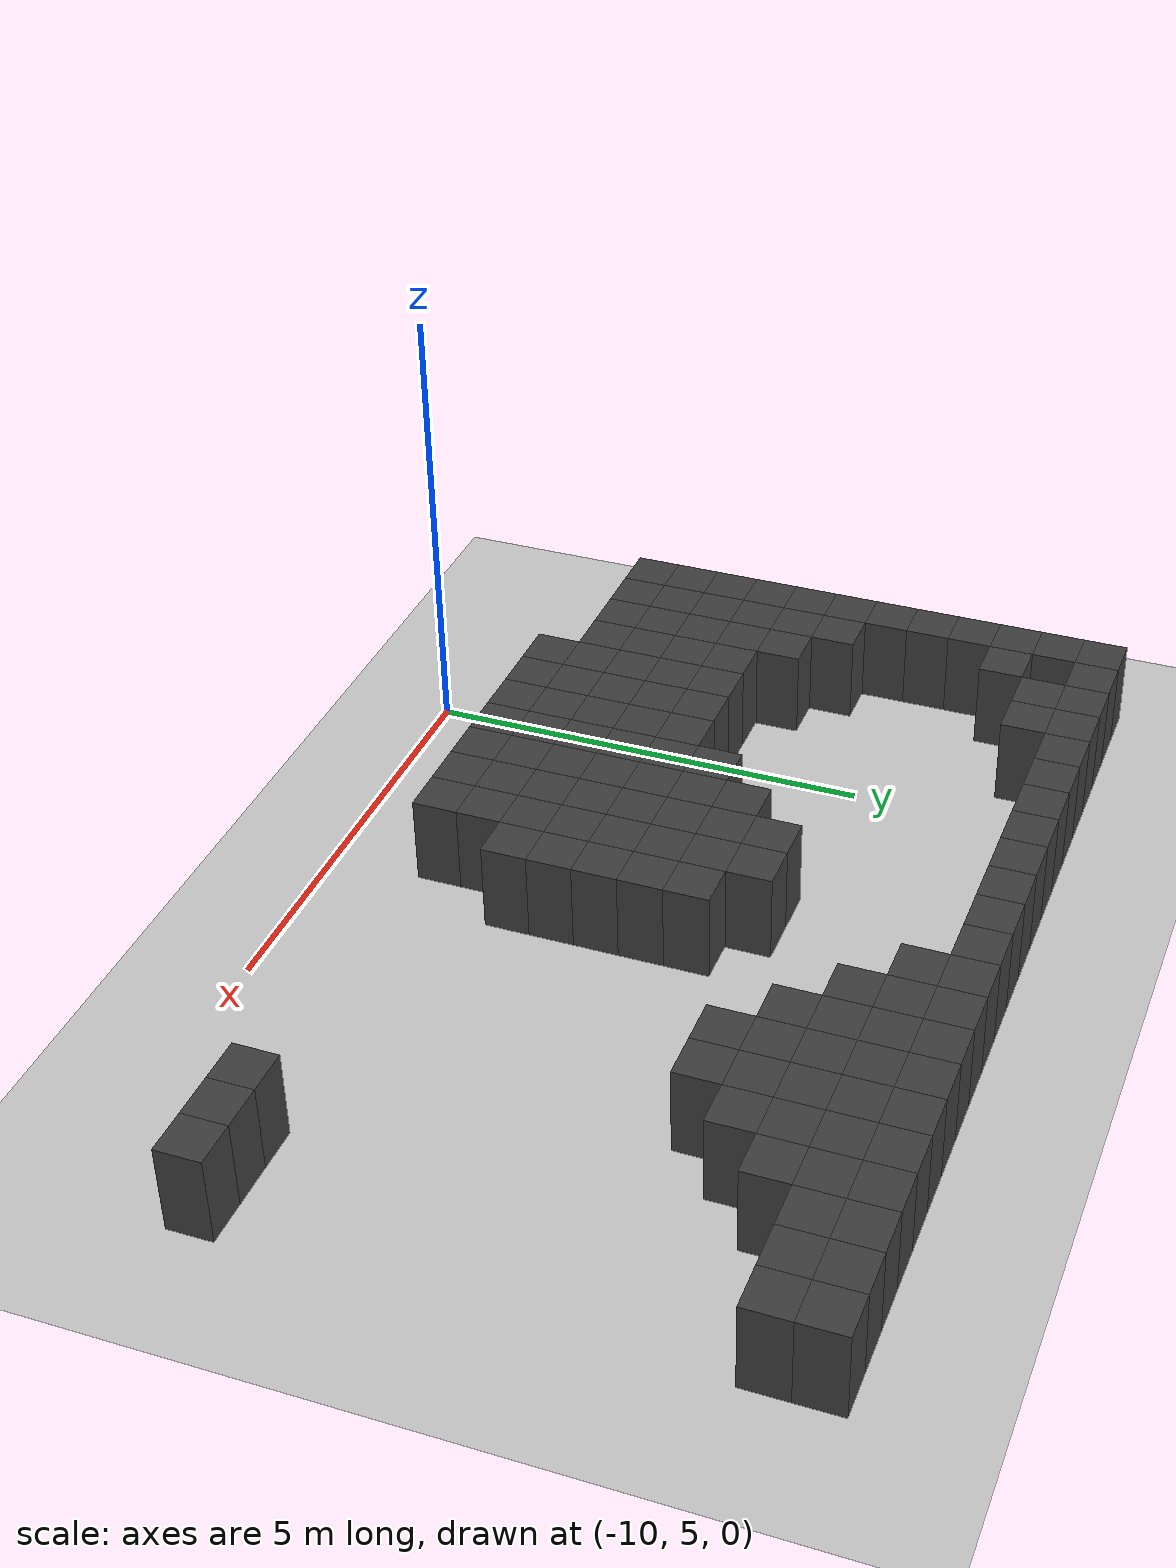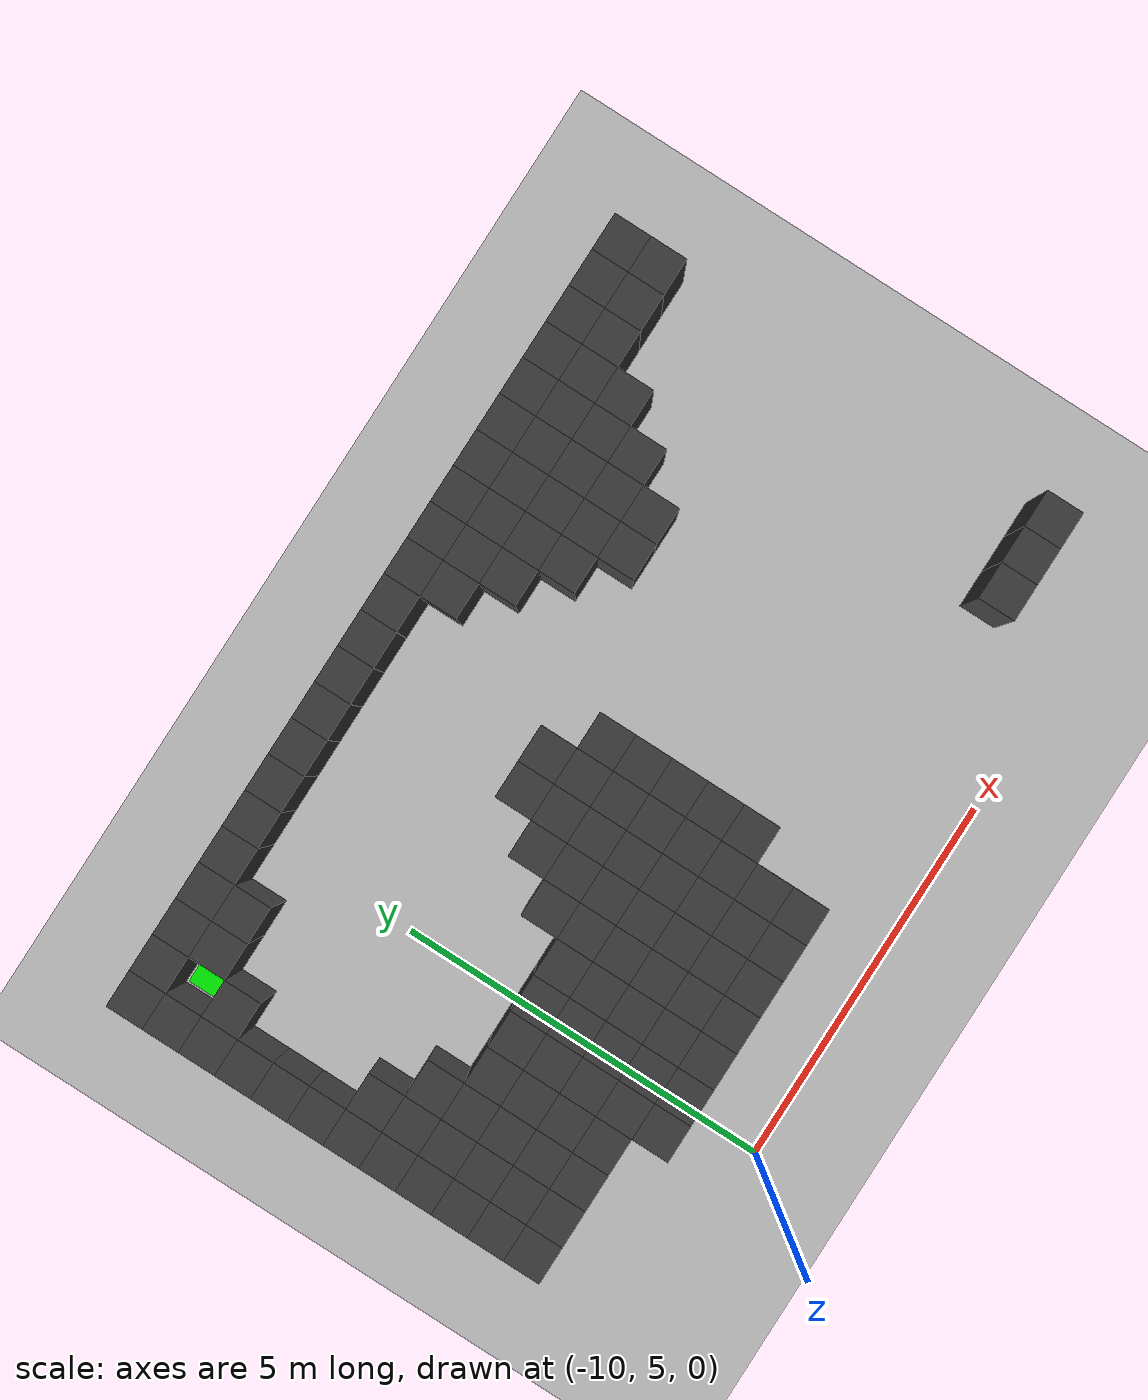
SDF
<sdf version="1.7">
 <world name="map_8658">
  <model name="ground_plane">
   <static>true</static>
   <link name="link">
    <collision name="collision">
     <geometry><plane><normal>0 0 1</normal><size>200 200</size></plane></geometry>
    </collision>
    <visual name="visual">
     <geometry><plane><normal>0 0 1</normal><size>200 200</size></plane></geometry>
     <material><ambient>0.8 0.8 0.8 1</ambient><diffuse>0.8 0.8 0.8 1</diffuse></material>
    </visual>
   </link>
  </model>
  <model name="maze_environment">
   <static>true</static>
   <link name="wall_0">
    <pose>-12.250 12.250 0.500 0 0 0</pose>
    <collision name="col"><geometry><box><size>0.5 0.5 1.0</size></box></geometry></collision>
    <visual name="vis">
     <geometry><box><size>0.5 0.5 1.0</size></box></geometry>
     <material><ambient>0.15 0.15 0.15 1</ambient><diffuse>0.25 0.25 0.25 1</diffuse></material>
    </visual>
   </link>
   <link name="wall_1">
    <pose>-11.750 12.250 0.500 0 0 0</pose>
    <collision name="col"><geometry><box><size>0.5 0.5 1.0</size></box></geometry></collision>
    <visual name="vis">
     <geometry><box><size>0.5 0.5 1.0</size></box></geometry>
     <material><ambient>0.15 0.15 0.15 1</ambient><diffuse>0.25 0.25 0.25 1</diffuse></material>
    </visual>
   </link>
   <link name="wall_2">
    <pose>-11.250 12.250 0.500 0 0 0</pose>
    <collision name="col"><geometry><box><size>0.5 0.5 1.0</size></box></geometry></collision>
    <visual name="vis">
     <geometry><box><size>0.5 0.5 1.0</size></box></geometry>
     <material><ambient>0.15 0.15 0.15 1</ambient><diffuse>0.25 0.25 0.25 1</diffuse></material>
    </visual>
   </link>
   <link name="wall_3">
    <pose>-10.750 12.250 0.500 0 0 0</pose>
    <collision name="col"><geometry><box><size>0.5 0.5 1.0</size></box></geometry></collision>
    <visual name="vis">
     <geometry><box><size>0.5 0.5 1.0</size></box></geometry>
     <material><ambient>0.15 0.15 0.15 1</ambient><diffuse>0.25 0.25 0.25 1</diffuse></material>
    </visual>
   </link>
   <link name="wall_4">
    <pose>-10.250 12.250 0.500 0 0 0</pose>
    <collision name="col"><geometry><box><size>0.5 0.5 1.0</size></box></geometry></collision>
    <visual name="vis">
     <geometry><box><size>0.5 0.5 1.0</size></box></geometry>
     <material><ambient>0.15 0.15 0.15 1</ambient><diffuse>0.25 0.25 0.25 1</diffuse></material>
    </visual>
   </link>
   <link name="wall_5">
    <pose>-9.750 12.250 0.500 0 0 0</pose>
    <collision name="col"><geometry><box><size>0.5 0.5 1.0</size></box></geometry></collision>
    <visual name="vis">
     <geometry><box><size>0.5 0.5 1.0</size></box></geometry>
     <material><ambient>0.15 0.15 0.15 1</ambient><diffuse>0.25 0.25 0.25 1</diffuse></material>
    </visual>
   </link>
   <link name="wall_6">
    <pose>-9.250 12.250 0.500 0 0 0</pose>
    <collision name="col"><geometry><box><size>0.5 0.5 1.0</size></box></geometry></collision>
    <visual name="vis">
     <geometry><box><size>0.5 0.5 1.0</size></box></geometry>
     <material><ambient>0.15 0.15 0.15 1</ambient><diffuse>0.25 0.25 0.25 1</diffuse></material>
    </visual>
   </link>
   <link name="wall_7">
    <pose>-8.750 12.250 0.500 0 0 0</pose>
    <collision name="col"><geometry><box><size>0.5 0.5 1.0</size></box></geometry></collision>
    <visual name="vis">
     <geometry><box><size>0.5 0.5 1.0</size></box></geometry>
     <material><ambient>0.15 0.15 0.15 1</ambient><diffuse>0.25 0.25 0.25 1</diffuse></material>
    </visual>
   </link>
   <link name="wall_8">
    <pose>-8.250 12.250 0.500 0 0 0</pose>
    <collision name="col"><geometry><box><size>0.5 0.5 1.0</size></box></geometry></collision>
    <visual name="vis">
     <geometry><box><size>0.5 0.5 1.0</size></box></geometry>
     <material><ambient>0.15 0.15 0.15 1</ambient><diffuse>0.25 0.25 0.25 1</diffuse></material>
    </visual>
   </link>
   <link name="wall_9">
    <pose>-7.750 12.250 0.500 0 0 0</pose>
    <collision name="col"><geometry><box><size>0.5 0.5 1.0</size></box></geometry></collision>
    <visual name="vis">
     <geometry><box><size>0.5 0.5 1.0</size></box></geometry>
     <material><ambient>0.15 0.15 0.15 1</ambient><diffuse>0.25 0.25 0.25 1</diffuse></material>
    </visual>
   </link>
   <link name="wall_10">
    <pose>-7.250 12.250 0.500 0 0 0</pose>
    <collision name="col"><geometry><box><size>0.5 0.5 1.0</size></box></geometry></collision>
    <visual name="vis">
     <geometry><box><size>0.5 0.5 1.0</size></box></geometry>
     <material><ambient>0.15 0.15 0.15 1</ambient><diffuse>0.25 0.25 0.25 1</diffuse></material>
    </visual>
   </link>
   <link name="wall_11">
    <pose>-6.750 12.250 0.500 0 0 0</pose>
    <collision name="col"><geometry><box><size>0.5 0.5 1.0</size></box></geometry></collision>
    <visual name="vis">
     <geometry><box><size>0.5 0.5 1.0</size></box></geometry>
     <material><ambient>0.15 0.15 0.15 1</ambient><diffuse>0.25 0.25 0.25 1</diffuse></material>
    </visual>
   </link>
   <link name="wall_12">
    <pose>-6.250 12.250 0.500 0 0 0</pose>
    <collision name="col"><geometry><box><size>0.5 0.5 1.0</size></box></geometry></collision>
    <visual name="vis">
     <geometry><box><size>0.5 0.5 1.0</size></box></geometry>
     <material><ambient>0.15 0.15 0.15 1</ambient><diffuse>0.25 0.25 0.25 1</diffuse></material>
    </visual>
   </link>
   <link name="wall_13">
    <pose>-5.750 12.250 0.500 0 0 0</pose>
    <collision name="col"><geometry><box><size>0.5 0.5 1.0</size></box></geometry></collision>
    <visual name="vis">
     <geometry><box><size>0.5 0.5 1.0</size></box></geometry>
     <material><ambient>0.15 0.15 0.15 1</ambient><diffuse>0.25 0.25 0.25 1</diffuse></material>
    </visual>
   </link>
   <link name="wall_14">
    <pose>-5.250 12.250 0.500 0 0 0</pose>
    <collision name="col"><geometry><box><size>0.5 0.5 1.0</size></box></geometry></collision>
    <visual name="vis">
     <geometry><box><size>0.5 0.5 1.0</size></box></geometry>
     <material><ambient>0.15 0.15 0.15 1</ambient><diffuse>0.25 0.25 0.25 1</diffuse></material>
    </visual>
   </link>
   <link name="wall_15">
    <pose>-4.750 12.250 0.500 0 0 0</pose>
    <collision name="col"><geometry><box><size>0.5 0.5 1.0</size></box></geometry></collision>
    <visual name="vis">
     <geometry><box><size>0.5 0.5 1.0</size></box></geometry>
     <material><ambient>0.15 0.15 0.15 1</ambient><diffuse>0.25 0.25 0.25 1</diffuse></material>
    </visual>
   </link>
   <link name="wall_16">
    <pose>-4.250 12.250 0.500 0 0 0</pose>
    <collision name="col"><geometry><box><size>0.5 0.5 1.0</size></box></geometry></collision>
    <visual name="vis">
     <geometry><box><size>0.5 0.5 1.0</size></box></geometry>
     <material><ambient>0.15 0.15 0.15 1</ambient><diffuse>0.25 0.25 0.25 1</diffuse></material>
    </visual>
   </link>
   <link name="wall_17">
    <pose>-3.750 12.250 0.500 0 0 0</pose>
    <collision name="col"><geometry><box><size>0.5 0.5 1.0</size></box></geometry></collision>
    <visual name="vis">
     <geometry><box><size>0.5 0.5 1.0</size></box></geometry>
     <material><ambient>0.15 0.15 0.15 1</ambient><diffuse>0.25 0.25 0.25 1</diffuse></material>
    </visual>
   </link>
   <link name="wall_18">
    <pose>-3.250 12.250 0.500 0 0 0</pose>
    <collision name="col"><geometry><box><size>0.5 0.5 1.0</size></box></geometry></collision>
    <visual name="vis">
     <geometry><box><size>0.5 0.5 1.0</size></box></geometry>
     <material><ambient>0.15 0.15 0.15 1</ambient><diffuse>0.25 0.25 0.25 1</diffuse></material>
    </visual>
   </link>
   <link name="wall_19">
    <pose>-2.750 12.250 0.500 0 0 0</pose>
    <collision name="col"><geometry><box><size>0.5 0.5 1.0</size></box></geometry></collision>
    <visual name="vis">
     <geometry><box><size>0.5 0.5 1.0</size></box></geometry>
     <material><ambient>0.15 0.15 0.15 1</ambient><diffuse>0.25 0.25 0.25 1</diffuse></material>
    </visual>
   </link>
   <link name="wall_20">
    <pose>-2.250 12.250 0.500 0 0 0</pose>
    <collision name="col"><geometry><box><size>0.5 0.5 1.0</size></box></geometry></collision>
    <visual name="vis">
     <geometry><box><size>0.5 0.5 1.0</size></box></geometry>
     <material><ambient>0.15 0.15 0.15 1</ambient><diffuse>0.25 0.25 0.25 1</diffuse></material>
    </visual>
   </link>
   <link name="wall_21">
    <pose>-1.750 12.250 0.500 0 0 0</pose>
    <collision name="col"><geometry><box><size>0.5 0.5 1.0</size></box></geometry></collision>
    <visual name="vis">
     <geometry><box><size>0.5 0.5 1.0</size></box></geometry>
     <material><ambient>0.15 0.15 0.15 1</ambient><diffuse>0.25 0.25 0.25 1</diffuse></material>
    </visual>
   </link>
   <link name="wall_50">
    <pose>-12.250 11.750 0.500 0 0 0</pose>
    <collision name="col"><geometry><box><size>0.5 0.5 1.0</size></box></geometry></collision>
    <visual name="vis">
     <geometry><box><size>0.5 0.5 1.0</size></box></geometry>
     <material><ambient>0.15 0.15 0.15 1</ambient><diffuse>0.25 0.25 0.25 1</diffuse></material>
    </visual>
   </link>
   <link name="wall_51">
    <pose>-11.250 11.750 0.500 0 0 0</pose>
    <collision name="col"><geometry><box><size>0.5 0.5 1.0</size></box></geometry></collision>
    <visual name="vis">
     <geometry><box><size>0.5 0.5 1.0</size></box></geometry>
     <material><ambient>0.15 0.15 0.15 1</ambient><diffuse>0.25 0.25 0.25 1</diffuse></material>
    </visual>
   </link>
   <link name="wall_52">
    <pose>-10.750 11.750 0.500 0 0 0</pose>
    <collision name="col"><geometry><box><size>0.5 0.5 1.0</size></box></geometry></collision>
    <visual name="vis">
     <geometry><box><size>0.5 0.5 1.0</size></box></geometry>
     <material><ambient>0.15 0.15 0.15 1</ambient><diffuse>0.25 0.25 0.25 1</diffuse></material>
    </visual>
   </link>
   <link name="wall_53">
    <pose>-6.250 11.750 0.500 0 0 0</pose>
    <collision name="col"><geometry><box><size>0.5 0.5 1.0</size></box></geometry></collision>
    <visual name="vis">
     <geometry><box><size>0.5 0.5 1.0</size></box></geometry>
     <material><ambient>0.15 0.15 0.15 1</ambient><diffuse>0.25 0.25 0.25 1</diffuse></material>
    </visual>
   </link>
   <link name="wall_54">
    <pose>-5.750 11.750 0.500 0 0 0</pose>
    <collision name="col"><geometry><box><size>0.5 0.5 1.0</size></box></geometry></collision>
    <visual name="vis">
     <geometry><box><size>0.5 0.5 1.0</size></box></geometry>
     <material><ambient>0.15 0.15 0.15 1</ambient><diffuse>0.25 0.25 0.25 1</diffuse></material>
    </visual>
   </link>
   <link name="wall_55">
    <pose>-5.250 11.750 0.500 0 0 0</pose>
    <collision name="col"><geometry><box><size>0.5 0.5 1.0</size></box></geometry></collision>
    <visual name="vis">
     <geometry><box><size>0.5 0.5 1.0</size></box></geometry>
     <material><ambient>0.15 0.15 0.15 1</ambient><diffuse>0.25 0.25 0.25 1</diffuse></material>
    </visual>
   </link>
   <link name="wall_56">
    <pose>-4.750 11.750 0.500 0 0 0</pose>
    <collision name="col"><geometry><box><size>0.5 0.5 1.0</size></box></geometry></collision>
    <visual name="vis">
     <geometry><box><size>0.5 0.5 1.0</size></box></geometry>
     <material><ambient>0.15 0.15 0.15 1</ambient><diffuse>0.25 0.25 0.25 1</diffuse></material>
    </visual>
   </link>
   <link name="wall_57">
    <pose>-4.250 11.750 0.500 0 0 0</pose>
    <collision name="col"><geometry><box><size>0.5 0.5 1.0</size></box></geometry></collision>
    <visual name="vis">
     <geometry><box><size>0.5 0.5 1.0</size></box></geometry>
     <material><ambient>0.15 0.15 0.15 1</ambient><diffuse>0.25 0.25 0.25 1</diffuse></material>
    </visual>
   </link>
   <link name="wall_58">
    <pose>-3.750 11.750 0.500 0 0 0</pose>
    <collision name="col"><geometry><box><size>0.5 0.5 1.0</size></box></geometry></collision>
    <visual name="vis">
     <geometry><box><size>0.5 0.5 1.0</size></box></geometry>
     <material><ambient>0.15 0.15 0.15 1</ambient><diffuse>0.25 0.25 0.25 1</diffuse></material>
    </visual>
   </link>
   <link name="wall_59">
    <pose>-3.250 11.750 0.500 0 0 0</pose>
    <collision name="col"><geometry><box><size>0.5 0.5 1.0</size></box></geometry></collision>
    <visual name="vis">
     <geometry><box><size>0.5 0.5 1.0</size></box></geometry>
     <material><ambient>0.15 0.15 0.15 1</ambient><diffuse>0.25 0.25 0.25 1</diffuse></material>
    </visual>
   </link>
   <link name="wall_60">
    <pose>-2.750 11.750 0.500 0 0 0</pose>
    <collision name="col"><geometry><box><size>0.5 0.5 1.0</size></box></geometry></collision>
    <visual name="vis">
     <geometry><box><size>0.5 0.5 1.0</size></box></geometry>
     <material><ambient>0.15 0.15 0.15 1</ambient><diffuse>0.25 0.25 0.25 1</diffuse></material>
    </visual>
   </link>
   <link name="wall_61">
    <pose>-2.250 11.750 0.500 0 0 0</pose>
    <collision name="col"><geometry><box><size>0.5 0.5 1.0</size></box></geometry></collision>
    <visual name="vis">
     <geometry><box><size>0.5 0.5 1.0</size></box></geometry>
     <material><ambient>0.15 0.15 0.15 1</ambient><diffuse>0.25 0.25 0.25 1</diffuse></material>
    </visual>
   </link>
   <link name="wall_62">
    <pose>-1.750 11.750 0.500 0 0 0</pose>
    <collision name="col"><geometry><box><size>0.5 0.5 1.0</size></box></geometry></collision>
    <visual name="vis">
     <geometry><box><size>0.5 0.5 1.0</size></box></geometry>
     <material><ambient>0.15 0.15 0.15 1</ambient><diffuse>0.25 0.25 0.25 1</diffuse></material>
    </visual>
   </link>
   <link name="wall_83">
    <pose>-12.250 11.250 0.500 0 0 0</pose>
    <collision name="col"><geometry><box><size>0.5 0.5 1.0</size></box></geometry></collision>
    <visual name="vis">
     <geometry><box><size>0.5 0.5 1.0</size></box></geometry>
     <material><ambient>0.15 0.15 0.15 1</ambient><diffuse>0.25 0.25 0.25 1</diffuse></material>
    </visual>
   </link>
   <link name="wall_84">
    <pose>-11.750 11.250 0.500 0 0 0</pose>
    <collision name="col"><geometry><box><size>0.5 0.5 1.0</size></box></geometry></collision>
    <visual name="vis">
     <geometry><box><size>0.5 0.5 1.0</size></box></geometry>
     <material><ambient>0.15 0.15 0.15 1</ambient><diffuse>0.25 0.25 0.25 1</diffuse></material>
    </visual>
   </link>
   <link name="wall_85">
    <pose>-5.750 11.250 0.500 0 0 0</pose>
    <collision name="col"><geometry><box><size>0.5 0.5 1.0</size></box></geometry></collision>
    <visual name="vis">
     <geometry><box><size>0.5 0.5 1.0</size></box></geometry>
     <material><ambient>0.15 0.15 0.15 1</ambient><diffuse>0.25 0.25 0.25 1</diffuse></material>
    </visual>
   </link>
   <link name="wall_86">
    <pose>-5.250 11.250 0.500 0 0 0</pose>
    <collision name="col"><geometry><box><size>0.5 0.5 1.0</size></box></geometry></collision>
    <visual name="vis">
     <geometry><box><size>0.5 0.5 1.0</size></box></geometry>
     <material><ambient>0.15 0.15 0.15 1</ambient><diffuse>0.25 0.25 0.25 1</diffuse></material>
    </visual>
   </link>
   <link name="wall_87">
    <pose>-4.750 11.250 0.500 0 0 0</pose>
    <collision name="col"><geometry><box><size>0.5 0.5 1.0</size></box></geometry></collision>
    <visual name="vis">
     <geometry><box><size>0.5 0.5 1.0</size></box></geometry>
     <material><ambient>0.15 0.15 0.15 1</ambient><diffuse>0.25 0.25 0.25 1</diffuse></material>
    </visual>
   </link>
   <link name="wall_88">
    <pose>-4.250 11.250 0.500 0 0 0</pose>
    <collision name="col"><geometry><box><size>0.5 0.5 1.0</size></box></geometry></collision>
    <visual name="vis">
     <geometry><box><size>0.5 0.5 1.0</size></box></geometry>
     <material><ambient>0.15 0.15 0.15 1</ambient><diffuse>0.25 0.25 0.25 1</diffuse></material>
    </visual>
   </link>
   <link name="wall_89">
    <pose>-3.750 11.250 0.500 0 0 0</pose>
    <collision name="col"><geometry><box><size>0.5 0.5 1.0</size></box></geometry></collision>
    <visual name="vis">
     <geometry><box><size>0.5 0.5 1.0</size></box></geometry>
     <material><ambient>0.15 0.15 0.15 1</ambient><diffuse>0.25 0.25 0.25 1</diffuse></material>
    </visual>
   </link>
   <link name="wall_90">
    <pose>-3.250 11.250 0.500 0 0 0</pose>
    <collision name="col"><geometry><box><size>0.5 0.5 1.0</size></box></geometry></collision>
    <visual name="vis">
     <geometry><box><size>0.5 0.5 1.0</size></box></geometry>
     <material><ambient>0.15 0.15 0.15 1</ambient><diffuse>0.25 0.25 0.25 1</diffuse></material>
    </visual>
   </link>
   <link name="wall_106">
    <pose>-12.250 10.750 0.500 0 0 0</pose>
    <collision name="col"><geometry><box><size>0.5 0.5 1.0</size></box></geometry></collision>
    <visual name="vis">
     <geometry><box><size>0.5 0.5 1.0</size></box></geometry>
     <material><ambient>0.15 0.15 0.15 1</ambient><diffuse>0.25 0.25 0.25 1</diffuse></material>
    </visual>
   </link>
   <link name="wall_107">
    <pose>-5.250 10.750 0.500 0 0 0</pose>
    <collision name="col"><geometry><box><size>0.5 0.5 1.0</size></box></geometry></collision>
    <visual name="vis">
     <geometry><box><size>0.5 0.5 1.0</size></box></geometry>
     <material><ambient>0.15 0.15 0.15 1</ambient><diffuse>0.25 0.25 0.25 1</diffuse></material>
    </visual>
   </link>
   <link name="wall_108">
    <pose>-4.750 10.750 0.500 0 0 0</pose>
    <collision name="col"><geometry><box><size>0.5 0.5 1.0</size></box></geometry></collision>
    <visual name="vis">
     <geometry><box><size>0.5 0.5 1.0</size></box></geometry>
     <material><ambient>0.15 0.15 0.15 1</ambient><diffuse>0.25 0.25 0.25 1</diffuse></material>
    </visual>
   </link>
   <link name="wall_109">
    <pose>-4.250 10.750 0.500 0 0 0</pose>
    <collision name="col"><geometry><box><size>0.5 0.5 1.0</size></box></geometry></collision>
    <visual name="vis">
     <geometry><box><size>0.5 0.5 1.0</size></box></geometry>
     <material><ambient>0.15 0.15 0.15 1</ambient><diffuse>0.25 0.25 0.25 1</diffuse></material>
    </visual>
   </link>
   <link name="wall_110">
    <pose>-3.750 10.750 0.500 0 0 0</pose>
    <collision name="col"><geometry><box><size>0.5 0.5 1.0</size></box></geometry></collision>
    <visual name="vis">
     <geometry><box><size>0.5 0.5 1.0</size></box></geometry>
     <material><ambient>0.15 0.15 0.15 1</ambient><diffuse>0.25 0.25 0.25 1</diffuse></material>
    </visual>
   </link>
   <link name="wall_123">
    <pose>-12.250 10.250 0.500 0 0 0</pose>
    <collision name="col"><geometry><box><size>0.5 0.5 1.0</size></box></geometry></collision>
    <visual name="vis">
     <geometry><box><size>0.5 0.5 1.0</size></box></geometry>
     <material><ambient>0.15 0.15 0.15 1</ambient><diffuse>0.25 0.25 0.25 1</diffuse></material>
    </visual>
   </link>
   <link name="wall_124">
    <pose>-4.750 10.250 0.500 0 0 0</pose>
    <collision name="col"><geometry><box><size>0.5 0.5 1.0</size></box></geometry></collision>
    <visual name="vis">
     <geometry><box><size>0.5 0.5 1.0</size></box></geometry>
     <material><ambient>0.15 0.15 0.15 1</ambient><diffuse>0.25 0.25 0.25 1</diffuse></material>
    </visual>
   </link>
   <link name="wall_125">
    <pose>-4.250 10.250 0.500 0 0 0</pose>
    <collision name="col"><geometry><box><size>0.5 0.5 1.0</size></box></geometry></collision>
    <visual name="vis">
     <geometry><box><size>0.5 0.5 1.0</size></box></geometry>
     <material><ambient>0.15 0.15 0.15 1</ambient><diffuse>0.25 0.25 0.25 1</diffuse></material>
    </visual>
   </link>
   <link name="wall_136">
    <pose>-12.250 9.750 0.500 0 0 0</pose>
    <collision name="col"><geometry><box><size>0.5 0.5 1.0</size></box></geometry></collision>
    <visual name="vis">
     <geometry><box><size>0.5 0.5 1.0</size></box></geometry>
     <material><ambient>0.15 0.15 0.15 1</ambient><diffuse>0.25 0.25 0.25 1</diffuse></material>
    </visual>
   </link>
   <link name="wall_137">
    <pose>-7.750 9.750 0.500 0 0 0</pose>
    <collision name="col"><geometry><box><size>0.5 0.5 1.0</size></box></geometry></collision>
    <visual name="vis">
     <geometry><box><size>0.5 0.5 1.0</size></box></geometry>
     <material><ambient>0.15 0.15 0.15 1</ambient><diffuse>0.25 0.25 0.25 1</diffuse></material>
    </visual>
   </link>
   <link name="wall_138">
    <pose>-7.250 9.750 0.500 0 0 0</pose>
    <collision name="col"><geometry><box><size>0.5 0.5 1.0</size></box></geometry></collision>
    <visual name="vis">
     <geometry><box><size>0.5 0.5 1.0</size></box></geometry>
     <material><ambient>0.15 0.15 0.15 1</ambient><diffuse>0.25 0.25 0.25 1</diffuse></material>
    </visual>
   </link>
   <link name="wall_152">
    <pose>-12.250 9.250 0.500 0 0 0</pose>
    <collision name="col"><geometry><box><size>0.5 0.5 1.0</size></box></geometry></collision>
    <visual name="vis">
     <geometry><box><size>0.5 0.5 1.0</size></box></geometry>
     <material><ambient>0.15 0.15 0.15 1</ambient><diffuse>0.25 0.25 0.25 1</diffuse></material>
    </visual>
   </link>
   <link name="wall_153">
    <pose>-11.750 9.250 0.500 0 0 0</pose>
    <collision name="col"><geometry><box><size>0.5 0.5 1.0</size></box></geometry></collision>
    <visual name="vis">
     <geometry><box><size>0.5 0.5 1.0</size></box></geometry>
     <material><ambient>0.15 0.15 0.15 1</ambient><diffuse>0.25 0.25 0.25 1</diffuse></material>
    </visual>
   </link>
   <link name="wall_154">
    <pose>-8.250 9.250 0.500 0 0 0</pose>
    <collision name="col"><geometry><box><size>0.5 0.5 1.0</size></box></geometry></collision>
    <visual name="vis">
     <geometry><box><size>0.5 0.5 1.0</size></box></geometry>
     <material><ambient>0.15 0.15 0.15 1</ambient><diffuse>0.25 0.25 0.25 1</diffuse></material>
    </visual>
   </link>
   <link name="wall_155">
    <pose>-7.750 9.250 0.500 0 0 0</pose>
    <collision name="col"><geometry><box><size>0.5 0.5 1.0</size></box></geometry></collision>
    <visual name="vis">
     <geometry><box><size>0.5 0.5 1.0</size></box></geometry>
     <material><ambient>0.15 0.15 0.15 1</ambient><diffuse>0.25 0.25 0.25 1</diffuse></material>
    </visual>
   </link>
   <link name="wall_156">
    <pose>-7.250 9.250 0.500 0 0 0</pose>
    <collision name="col"><geometry><box><size>0.5 0.5 1.0</size></box></geometry></collision>
    <visual name="vis">
     <geometry><box><size>0.5 0.5 1.0</size></box></geometry>
     <material><ambient>0.15 0.15 0.15 1</ambient><diffuse>0.25 0.25 0.25 1</diffuse></material>
    </visual>
   </link>
   <link name="wall_157">
    <pose>-6.750 9.250 0.500 0 0 0</pose>
    <collision name="col"><geometry><box><size>0.5 0.5 1.0</size></box></geometry></collision>
    <visual name="vis">
     <geometry><box><size>0.5 0.5 1.0</size></box></geometry>
     <material><ambient>0.15 0.15 0.15 1</ambient><diffuse>0.25 0.25 0.25 1</diffuse></material>
    </visual>
   </link>
   <link name="wall_169">
    <pose>-12.250 8.750 0.500 0 0 0</pose>
    <collision name="col"><geometry><box><size>0.5 0.5 1.0</size></box></geometry></collision>
    <visual name="vis">
     <geometry><box><size>0.5 0.5 1.0</size></box></geometry>
     <material><ambient>0.15 0.15 0.15 1</ambient><diffuse>0.25 0.25 0.25 1</diffuse></material>
    </visual>
   </link>
   <link name="wall_170">
    <pose>-11.750 8.750 0.500 0 0 0</pose>
    <collision name="col"><geometry><box><size>0.5 0.5 1.0</size></box></geometry></collision>
    <visual name="vis">
     <geometry><box><size>0.5 0.5 1.0</size></box></geometry>
     <material><ambient>0.15 0.15 0.15 1</ambient><diffuse>0.25 0.25 0.25 1</diffuse></material>
    </visual>
   </link>
   <link name="wall_171">
    <pose>-11.250 8.750 0.500 0 0 0</pose>
    <collision name="col"><geometry><box><size>0.5 0.5 1.0</size></box></geometry></collision>
    <visual name="vis">
     <geometry><box><size>0.5 0.5 1.0</size></box></geometry>
     <material><ambient>0.15 0.15 0.15 1</ambient><diffuse>0.25 0.25 0.25 1</diffuse></material>
    </visual>
   </link>
   <link name="wall_172">
    <pose>-8.750 8.750 0.500 0 0 0</pose>
    <collision name="col"><geometry><box><size>0.5 0.5 1.0</size></box></geometry></collision>
    <visual name="vis">
     <geometry><box><size>0.5 0.5 1.0</size></box></geometry>
     <material><ambient>0.15 0.15 0.15 1</ambient><diffuse>0.25 0.25 0.25 1</diffuse></material>
    </visual>
   </link>
   <link name="wall_173">
    <pose>-8.250 8.750 0.500 0 0 0</pose>
    <collision name="col"><geometry><box><size>0.5 0.5 1.0</size></box></geometry></collision>
    <visual name="vis">
     <geometry><box><size>0.5 0.5 1.0</size></box></geometry>
     <material><ambient>0.15 0.15 0.15 1</ambient><diffuse>0.25 0.25 0.25 1</diffuse></material>
    </visual>
   </link>
   <link name="wall_174">
    <pose>-7.750 8.750 0.500 0 0 0</pose>
    <collision name="col"><geometry><box><size>0.5 0.5 1.0</size></box></geometry></collision>
    <visual name="vis">
     <geometry><box><size>0.5 0.5 1.0</size></box></geometry>
     <material><ambient>0.15 0.15 0.15 1</ambient><diffuse>0.25 0.25 0.25 1</diffuse></material>
    </visual>
   </link>
   <link name="wall_175">
    <pose>-7.250 8.750 0.500 0 0 0</pose>
    <collision name="col"><geometry><box><size>0.5 0.5 1.0</size></box></geometry></collision>
    <visual name="vis">
     <geometry><box><size>0.5 0.5 1.0</size></box></geometry>
     <material><ambient>0.15 0.15 0.15 1</ambient><diffuse>0.25 0.25 0.25 1</diffuse></material>
    </visual>
   </link>
   <link name="wall_176">
    <pose>-6.750 8.750 0.500 0 0 0</pose>
    <collision name="col"><geometry><box><size>0.5 0.5 1.0</size></box></geometry></collision>
    <visual name="vis">
     <geometry><box><size>0.5 0.5 1.0</size></box></geometry>
     <material><ambient>0.15 0.15 0.15 1</ambient><diffuse>0.25 0.25 0.25 1</diffuse></material>
    </visual>
   </link>
   <link name="wall_188">
    <pose>-12.250 8.250 0.500 0 0 0</pose>
    <collision name="col"><geometry><box><size>0.5 0.5 1.0</size></box></geometry></collision>
    <visual name="vis">
     <geometry><box><size>0.5 0.5 1.0</size></box></geometry>
     <material><ambient>0.15 0.15 0.15 1</ambient><diffuse>0.25 0.25 0.25 1</diffuse></material>
    </visual>
   </link>
   <link name="wall_189">
    <pose>-11.750 8.250 0.500 0 0 0</pose>
    <collision name="col"><geometry><box><size>0.5 0.5 1.0</size></box></geometry></collision>
    <visual name="vis">
     <geometry><box><size>0.5 0.5 1.0</size></box></geometry>
     <material><ambient>0.15 0.15 0.15 1</ambient><diffuse>0.25 0.25 0.25 1</diffuse></material>
    </visual>
   </link>
   <link name="wall_190">
    <pose>-11.250 8.250 0.500 0 0 0</pose>
    <collision name="col"><geometry><box><size>0.5 0.5 1.0</size></box></geometry></collision>
    <visual name="vis">
     <geometry><box><size>0.5 0.5 1.0</size></box></geometry>
     <material><ambient>0.15 0.15 0.15 1</ambient><diffuse>0.25 0.25 0.25 1</diffuse></material>
    </visual>
   </link>
   <link name="wall_191">
    <pose>-10.750 8.250 0.500 0 0 0</pose>
    <collision name="col"><geometry><box><size>0.5 0.5 1.0</size></box></geometry></collision>
    <visual name="vis">
     <geometry><box><size>0.5 0.5 1.0</size></box></geometry>
     <material><ambient>0.15 0.15 0.15 1</ambient><diffuse>0.25 0.25 0.25 1</diffuse></material>
    </visual>
   </link>
   <link name="wall_192">
    <pose>-10.250 8.250 0.500 0 0 0</pose>
    <collision name="col"><geometry><box><size>0.5 0.5 1.0</size></box></geometry></collision>
    <visual name="vis">
     <geometry><box><size>0.5 0.5 1.0</size></box></geometry>
     <material><ambient>0.15 0.15 0.15 1</ambient><diffuse>0.25 0.25 0.25 1</diffuse></material>
    </visual>
   </link>
   <link name="wall_193">
    <pose>-9.750 8.250 0.500 0 0 0</pose>
    <collision name="col"><geometry><box><size>0.5 0.5 1.0</size></box></geometry></collision>
    <visual name="vis">
     <geometry><box><size>0.5 0.5 1.0</size></box></geometry>
     <material><ambient>0.15 0.15 0.15 1</ambient><diffuse>0.25 0.25 0.25 1</diffuse></material>
    </visual>
   </link>
   <link name="wall_194">
    <pose>-9.250 8.250 0.500 0 0 0</pose>
    <collision name="col"><geometry><box><size>0.5 0.5 1.0</size></box></geometry></collision>
    <visual name="vis">
     <geometry><box><size>0.5 0.5 1.0</size></box></geometry>
     <material><ambient>0.15 0.15 0.15 1</ambient><diffuse>0.25 0.25 0.25 1</diffuse></material>
    </visual>
   </link>
   <link name="wall_195">
    <pose>-8.750 8.250 0.500 0 0 0</pose>
    <collision name="col"><geometry><box><size>0.5 0.5 1.0</size></box></geometry></collision>
    <visual name="vis">
     <geometry><box><size>0.5 0.5 1.0</size></box></geometry>
     <material><ambient>0.15 0.15 0.15 1</ambient><diffuse>0.25 0.25 0.25 1</diffuse></material>
    </visual>
   </link>
   <link name="wall_196">
    <pose>-8.250 8.250 0.500 0 0 0</pose>
    <collision name="col"><geometry><box><size>0.5 0.5 1.0</size></box></geometry></collision>
    <visual name="vis">
     <geometry><box><size>0.5 0.5 1.0</size></box></geometry>
     <material><ambient>0.15 0.15 0.15 1</ambient><diffuse>0.25 0.25 0.25 1</diffuse></material>
    </visual>
   </link>
   <link name="wall_197">
    <pose>-7.750 8.250 0.500 0 0 0</pose>
    <collision name="col"><geometry><box><size>0.5 0.5 1.0</size></box></geometry></collision>
    <visual name="vis">
     <geometry><box><size>0.5 0.5 1.0</size></box></geometry>
     <material><ambient>0.15 0.15 0.15 1</ambient><diffuse>0.25 0.25 0.25 1</diffuse></material>
    </visual>
   </link>
   <link name="wall_198">
    <pose>-7.250 8.250 0.500 0 0 0</pose>
    <collision name="col"><geometry><box><size>0.5 0.5 1.0</size></box></geometry></collision>
    <visual name="vis">
     <geometry><box><size>0.5 0.5 1.0</size></box></geometry>
     <material><ambient>0.15 0.15 0.15 1</ambient><diffuse>0.25 0.25 0.25 1</diffuse></material>
    </visual>
   </link>
   <link name="wall_199">
    <pose>-6.750 8.250 0.500 0 0 0</pose>
    <collision name="col"><geometry><box><size>0.5 0.5 1.0</size></box></geometry></collision>
    <visual name="vis">
     <geometry><box><size>0.5 0.5 1.0</size></box></geometry>
     <material><ambient>0.15 0.15 0.15 1</ambient><diffuse>0.25 0.25 0.25 1</diffuse></material>
    </visual>
   </link>
   <link name="wall_210">
    <pose>-12.250 7.750 0.500 0 0 0</pose>
    <collision name="col"><geometry><box><size>0.5 0.5 1.0</size></box></geometry></collision>
    <visual name="vis">
     <geometry><box><size>0.5 0.5 1.0</size></box></geometry>
     <material><ambient>0.15 0.15 0.15 1</ambient><diffuse>0.25 0.25 0.25 1</diffuse></material>
    </visual>
   </link>
   <link name="wall_211">
    <pose>-11.750 7.750 0.500 0 0 0</pose>
    <collision name="col"><geometry><box><size>0.5 0.5 1.0</size></box></geometry></collision>
    <visual name="vis">
     <geometry><box><size>0.5 0.5 1.0</size></box></geometry>
     <material><ambient>0.15 0.15 0.15 1</ambient><diffuse>0.25 0.25 0.25 1</diffuse></material>
    </visual>
   </link>
   <link name="wall_212">
    <pose>-11.250 7.750 0.500 0 0 0</pose>
    <collision name="col"><geometry><box><size>0.5 0.5 1.0</size></box></geometry></collision>
    <visual name="vis">
     <geometry><box><size>0.5 0.5 1.0</size></box></geometry>
     <material><ambient>0.15 0.15 0.15 1</ambient><diffuse>0.25 0.25 0.25 1</diffuse></material>
    </visual>
   </link>
   <link name="wall_213">
    <pose>-10.750 7.750 0.500 0 0 0</pose>
    <collision name="col"><geometry><box><size>0.5 0.5 1.0</size></box></geometry></collision>
    <visual name="vis">
     <geometry><box><size>0.5 0.5 1.0</size></box></geometry>
     <material><ambient>0.15 0.15 0.15 1</ambient><diffuse>0.25 0.25 0.25 1</diffuse></material>
    </visual>
   </link>
   <link name="wall_214">
    <pose>-10.250 7.750 0.500 0 0 0</pose>
    <collision name="col"><geometry><box><size>0.5 0.5 1.0</size></box></geometry></collision>
    <visual name="vis">
     <geometry><box><size>0.5 0.5 1.0</size></box></geometry>
     <material><ambient>0.15 0.15 0.15 1</ambient><diffuse>0.25 0.25 0.25 1</diffuse></material>
    </visual>
   </link>
   <link name="wall_215">
    <pose>-9.750 7.750 0.500 0 0 0</pose>
    <collision name="col"><geometry><box><size>0.5 0.5 1.0</size></box></geometry></collision>
    <visual name="vis">
     <geometry><box><size>0.5 0.5 1.0</size></box></geometry>
     <material><ambient>0.15 0.15 0.15 1</ambient><diffuse>0.25 0.25 0.25 1</diffuse></material>
    </visual>
   </link>
   <link name="wall_216">
    <pose>-9.250 7.750 0.500 0 0 0</pose>
    <collision name="col"><geometry><box><size>0.5 0.5 1.0</size></box></geometry></collision>
    <visual name="vis">
     <geometry><box><size>0.5 0.5 1.0</size></box></geometry>
     <material><ambient>0.15 0.15 0.15 1</ambient><diffuse>0.25 0.25 0.25 1</diffuse></material>
    </visual>
   </link>
   <link name="wall_217">
    <pose>-8.750 7.750 0.500 0 0 0</pose>
    <collision name="col"><geometry><box><size>0.5 0.5 1.0</size></box></geometry></collision>
    <visual name="vis">
     <geometry><box><size>0.5 0.5 1.0</size></box></geometry>
     <material><ambient>0.15 0.15 0.15 1</ambient><diffuse>0.25 0.25 0.25 1</diffuse></material>
    </visual>
   </link>
   <link name="wall_218">
    <pose>-8.250 7.750 0.500 0 0 0</pose>
    <collision name="col"><geometry><box><size>0.5 0.5 1.0</size></box></geometry></collision>
    <visual name="vis">
     <geometry><box><size>0.5 0.5 1.0</size></box></geometry>
     <material><ambient>0.15 0.15 0.15 1</ambient><diffuse>0.25 0.25 0.25 1</diffuse></material>
    </visual>
   </link>
   <link name="wall_219">
    <pose>-7.750 7.750 0.500 0 0 0</pose>
    <collision name="col"><geometry><box><size>0.5 0.5 1.0</size></box></geometry></collision>
    <visual name="vis">
     <geometry><box><size>0.5 0.5 1.0</size></box></geometry>
     <material><ambient>0.15 0.15 0.15 1</ambient><diffuse>0.25 0.25 0.25 1</diffuse></material>
    </visual>
   </link>
   <link name="wall_220">
    <pose>-7.250 7.750 0.500 0 0 0</pose>
    <collision name="col"><geometry><box><size>0.5 0.5 1.0</size></box></geometry></collision>
    <visual name="vis">
     <geometry><box><size>0.5 0.5 1.0</size></box></geometry>
     <material><ambient>0.15 0.15 0.15 1</ambient><diffuse>0.25 0.25 0.25 1</diffuse></material>
    </visual>
   </link>
   <link name="wall_221">
    <pose>-6.750 7.750 0.500 0 0 0</pose>
    <collision name="col"><geometry><box><size>0.5 0.5 1.0</size></box></geometry></collision>
    <visual name="vis">
     <geometry><box><size>0.5 0.5 1.0</size></box></geometry>
     <material><ambient>0.15 0.15 0.15 1</ambient><diffuse>0.25 0.25 0.25 1</diffuse></material>
    </visual>
   </link>
   <link name="wall_231">
    <pose>-12.250 7.250 0.500 0 0 0</pose>
    <collision name="col"><geometry><box><size>0.5 0.5 1.0</size></box></geometry></collision>
    <visual name="vis">
     <geometry><box><size>0.5 0.5 1.0</size></box></geometry>
     <material><ambient>0.15 0.15 0.15 1</ambient><diffuse>0.25 0.25 0.25 1</diffuse></material>
    </visual>
   </link>
   <link name="wall_232">
    <pose>-11.750 7.250 0.500 0 0 0</pose>
    <collision name="col"><geometry><box><size>0.5 0.5 1.0</size></box></geometry></collision>
    <visual name="vis">
     <geometry><box><size>0.5 0.5 1.0</size></box></geometry>
     <material><ambient>0.15 0.15 0.15 1</ambient><diffuse>0.25 0.25 0.25 1</diffuse></material>
    </visual>
   </link>
   <link name="wall_233">
    <pose>-11.250 7.250 0.500 0 0 0</pose>
    <collision name="col"><geometry><box><size>0.5 0.5 1.0</size></box></geometry></collision>
    <visual name="vis">
     <geometry><box><size>0.5 0.5 1.0</size></box></geometry>
     <material><ambient>0.15 0.15 0.15 1</ambient><diffuse>0.25 0.25 0.25 1</diffuse></material>
    </visual>
   </link>
   <link name="wall_234">
    <pose>-10.750 7.250 0.500 0 0 0</pose>
    <collision name="col"><geometry><box><size>0.5 0.5 1.0</size></box></geometry></collision>
    <visual name="vis">
     <geometry><box><size>0.5 0.5 1.0</size></box></geometry>
     <material><ambient>0.15 0.15 0.15 1</ambient><diffuse>0.25 0.25 0.25 1</diffuse></material>
    </visual>
   </link>
   <link name="wall_235">
    <pose>-10.250 7.250 0.500 0 0 0</pose>
    <collision name="col"><geometry><box><size>0.5 0.5 1.0</size></box></geometry></collision>
    <visual name="vis">
     <geometry><box><size>0.5 0.5 1.0</size></box></geometry>
     <material><ambient>0.15 0.15 0.15 1</ambient><diffuse>0.25 0.25 0.25 1</diffuse></material>
    </visual>
   </link>
   <link name="wall_236">
    <pose>-9.750 7.250 0.500 0 0 0</pose>
    <collision name="col"><geometry><box><size>0.5 0.5 1.0</size></box></geometry></collision>
    <visual name="vis">
     <geometry><box><size>0.5 0.5 1.0</size></box></geometry>
     <material><ambient>0.15 0.15 0.15 1</ambient><diffuse>0.25 0.25 0.25 1</diffuse></material>
    </visual>
   </link>
   <link name="wall_237">
    <pose>-9.250 7.250 0.500 0 0 0</pose>
    <collision name="col"><geometry><box><size>0.5 0.5 1.0</size></box></geometry></collision>
    <visual name="vis">
     <geometry><box><size>0.5 0.5 1.0</size></box></geometry>
     <material><ambient>0.15 0.15 0.15 1</ambient><diffuse>0.25 0.25 0.25 1</diffuse></material>
    </visual>
   </link>
   <link name="wall_238">
    <pose>-8.750 7.250 0.500 0 0 0</pose>
    <collision name="col"><geometry><box><size>0.5 0.5 1.0</size></box></geometry></collision>
    <visual name="vis">
     <geometry><box><size>0.5 0.5 1.0</size></box></geometry>
     <material><ambient>0.15 0.15 0.15 1</ambient><diffuse>0.25 0.25 0.25 1</diffuse></material>
    </visual>
   </link>
   <link name="wall_239">
    <pose>-8.250 7.250 0.500 0 0 0</pose>
    <collision name="col"><geometry><box><size>0.5 0.5 1.0</size></box></geometry></collision>
    <visual name="vis">
     <geometry><box><size>0.5 0.5 1.0</size></box></geometry>
     <material><ambient>0.15 0.15 0.15 1</ambient><diffuse>0.25 0.25 0.25 1</diffuse></material>
    </visual>
   </link>
   <link name="wall_240">
    <pose>-7.750 7.250 0.500 0 0 0</pose>
    <collision name="col"><geometry><box><size>0.5 0.5 1.0</size></box></geometry></collision>
    <visual name="vis">
     <geometry><box><size>0.5 0.5 1.0</size></box></geometry>
     <material><ambient>0.15 0.15 0.15 1</ambient><diffuse>0.25 0.25 0.25 1</diffuse></material>
    </visual>
   </link>
   <link name="wall_241">
    <pose>-7.250 7.250 0.500 0 0 0</pose>
    <collision name="col"><geometry><box><size>0.5 0.5 1.0</size></box></geometry></collision>
    <visual name="vis">
     <geometry><box><size>0.5 0.5 1.0</size></box></geometry>
     <material><ambient>0.15 0.15 0.15 1</ambient><diffuse>0.25 0.25 0.25 1</diffuse></material>
    </visual>
   </link>
   <link name="wall_242">
    <pose>-6.750 7.250 0.500 0 0 0</pose>
    <collision name="col"><geometry><box><size>0.5 0.5 1.0</size></box></geometry></collision>
    <visual name="vis">
     <geometry><box><size>0.5 0.5 1.0</size></box></geometry>
     <material><ambient>0.15 0.15 0.15 1</ambient><diffuse>0.25 0.25 0.25 1</diffuse></material>
    </visual>
   </link>
   <link name="wall_249">
    <pose>-12.250 6.750 0.500 0 0 0</pose>
    <collision name="col"><geometry><box><size>0.5 0.5 1.0</size></box></geometry></collision>
    <visual name="vis">
     <geometry><box><size>0.5 0.5 1.0</size></box></geometry>
     <material><ambient>0.15 0.15 0.15 1</ambient><diffuse>0.25 0.25 0.25 1</diffuse></material>
    </visual>
   </link>
   <link name="wall_250">
    <pose>-11.750 6.750 0.500 0 0 0</pose>
    <collision name="col"><geometry><box><size>0.5 0.5 1.0</size></box></geometry></collision>
    <visual name="vis">
     <geometry><box><size>0.5 0.5 1.0</size></box></geometry>
     <material><ambient>0.15 0.15 0.15 1</ambient><diffuse>0.25 0.25 0.25 1</diffuse></material>
    </visual>
   </link>
   <link name="wall_251">
    <pose>-11.250 6.750 0.500 0 0 0</pose>
    <collision name="col"><geometry><box><size>0.5 0.5 1.0</size></box></geometry></collision>
    <visual name="vis">
     <geometry><box><size>0.5 0.5 1.0</size></box></geometry>
     <material><ambient>0.15 0.15 0.15 1</ambient><diffuse>0.25 0.25 0.25 1</diffuse></material>
    </visual>
   </link>
   <link name="wall_252">
    <pose>-10.750 6.750 0.500 0 0 0</pose>
    <collision name="col"><geometry><box><size>0.5 0.5 1.0</size></box></geometry></collision>
    <visual name="vis">
     <geometry><box><size>0.5 0.5 1.0</size></box></geometry>
     <material><ambient>0.15 0.15 0.15 1</ambient><diffuse>0.25 0.25 0.25 1</diffuse></material>
    </visual>
   </link>
   <link name="wall_253">
    <pose>-10.250 6.750 0.500 0 0 0</pose>
    <collision name="col"><geometry><box><size>0.5 0.5 1.0</size></box></geometry></collision>
    <visual name="vis">
     <geometry><box><size>0.5 0.5 1.0</size></box></geometry>
     <material><ambient>0.15 0.15 0.15 1</ambient><diffuse>0.25 0.25 0.25 1</diffuse></material>
    </visual>
   </link>
   <link name="wall_254">
    <pose>-9.750 6.750 0.500 0 0 0</pose>
    <collision name="col"><geometry><box><size>0.5 0.5 1.0</size></box></geometry></collision>
    <visual name="vis">
     <geometry><box><size>0.5 0.5 1.0</size></box></geometry>
     <material><ambient>0.15 0.15 0.15 1</ambient><diffuse>0.25 0.25 0.25 1</diffuse></material>
    </visual>
   </link>
   <link name="wall_255">
    <pose>-9.250 6.750 0.500 0 0 0</pose>
    <collision name="col"><geometry><box><size>0.5 0.5 1.0</size></box></geometry></collision>
    <visual name="vis">
     <geometry><box><size>0.5 0.5 1.0</size></box></geometry>
     <material><ambient>0.15 0.15 0.15 1</ambient><diffuse>0.25 0.25 0.25 1</diffuse></material>
    </visual>
   </link>
   <link name="wall_256">
    <pose>-8.750 6.750 0.500 0 0 0</pose>
    <collision name="col"><geometry><box><size>0.5 0.5 1.0</size></box></geometry></collision>
    <visual name="vis">
     <geometry><box><size>0.5 0.5 1.0</size></box></geometry>
     <material><ambient>0.15 0.15 0.15 1</ambient><diffuse>0.25 0.25 0.25 1</diffuse></material>
    </visual>
   </link>
   <link name="wall_257">
    <pose>-8.250 6.750 0.500 0 0 0</pose>
    <collision name="col"><geometry><box><size>0.5 0.5 1.0</size></box></geometry></collision>
    <visual name="vis">
     <geometry><box><size>0.5 0.5 1.0</size></box></geometry>
     <material><ambient>0.15 0.15 0.15 1</ambient><diffuse>0.25 0.25 0.25 1</diffuse></material>
    </visual>
   </link>
   <link name="wall_258">
    <pose>-7.750 6.750 0.500 0 0 0</pose>
    <collision name="col"><geometry><box><size>0.5 0.5 1.0</size></box></geometry></collision>
    <visual name="vis">
     <geometry><box><size>0.5 0.5 1.0</size></box></geometry>
     <material><ambient>0.15 0.15 0.15 1</ambient><diffuse>0.25 0.25 0.25 1</diffuse></material>
    </visual>
   </link>
   <link name="wall_259">
    <pose>-7.250 6.750 0.500 0 0 0</pose>
    <collision name="col"><geometry><box><size>0.5 0.5 1.0</size></box></geometry></collision>
    <visual name="vis">
     <geometry><box><size>0.5 0.5 1.0</size></box></geometry>
     <material><ambient>0.15 0.15 0.15 1</ambient><diffuse>0.25 0.25 0.25 1</diffuse></material>
    </visual>
   </link>
   <link name="wall_269">
    <pose>-10.250 6.250 0.500 0 0 0</pose>
    <collision name="col"><geometry><box><size>0.5 0.5 1.0</size></box></geometry></collision>
    <visual name="vis">
     <geometry><box><size>0.5 0.5 1.0</size></box></geometry>
     <material><ambient>0.15 0.15 0.15 1</ambient><diffuse>0.25 0.25 0.25 1</diffuse></material>
    </visual>
   </link>
   <link name="wall_270">
    <pose>-9.750 6.250 0.500 0 0 0</pose>
    <collision name="col"><geometry><box><size>0.5 0.5 1.0</size></box></geometry></collision>
    <visual name="vis">
     <geometry><box><size>0.5 0.5 1.0</size></box></geometry>
     <material><ambient>0.15 0.15 0.15 1</ambient><diffuse>0.25 0.25 0.25 1</diffuse></material>
    </visual>
   </link>
   <link name="wall_271">
    <pose>-9.250 6.250 0.500 0 0 0</pose>
    <collision name="col"><geometry><box><size>0.5 0.5 1.0</size></box></geometry></collision>
    <visual name="vis">
     <geometry><box><size>0.5 0.5 1.0</size></box></geometry>
     <material><ambient>0.15 0.15 0.15 1</ambient><diffuse>0.25 0.25 0.25 1</diffuse></material>
    </visual>
   </link>
   <link name="wall_272">
    <pose>-8.750 6.250 0.500 0 0 0</pose>
    <collision name="col"><geometry><box><size>0.5 0.5 1.0</size></box></geometry></collision>
    <visual name="vis">
     <geometry><box><size>0.5 0.5 1.0</size></box></geometry>
     <material><ambient>0.15 0.15 0.15 1</ambient><diffuse>0.25 0.25 0.25 1</diffuse></material>
    </visual>
   </link>
   <link name="wall_273">
    <pose>-8.250 6.250 0.500 0 0 0</pose>
    <collision name="col"><geometry><box><size>0.5 0.5 1.0</size></box></geometry></collision>
    <visual name="vis">
     <geometry><box><size>0.5 0.5 1.0</size></box></geometry>
     <material><ambient>0.15 0.15 0.15 1</ambient><diffuse>0.25 0.25 0.25 1</diffuse></material>
    </visual>
   </link>
   <link name="wall_274">
    <pose>-7.750 6.250 0.500 0 0 0</pose>
    <collision name="col"><geometry><box><size>0.5 0.5 1.0</size></box></geometry></collision>
    <visual name="vis">
     <geometry><box><size>0.5 0.5 1.0</size></box></geometry>
     <material><ambient>0.15 0.15 0.15 1</ambient><diffuse>0.25 0.25 0.25 1</diffuse></material>
    </visual>
   </link>
   <link name="wall_275">
    <pose>-7.250 6.250 0.500 0 0 0</pose>
    <collision name="col"><geometry><box><size>0.5 0.5 1.0</size></box></geometry></collision>
    <visual name="vis">
     <geometry><box><size>0.5 0.5 1.0</size></box></geometry>
     <material><ambient>0.15 0.15 0.15 1</ambient><diffuse>0.25 0.25 0.25 1</diffuse></material>
    </visual>
   </link>
   <link name="wall_276">
    <pose>-2.750 6.250 0.500 0 0 0</pose>
    <collision name="col"><geometry><box><size>0.5 0.5 1.0</size></box></geometry></collision>
    <visual name="vis">
     <geometry><box><size>0.5 0.5 1.0</size></box></geometry>
     <material><ambient>0.15 0.15 0.15 1</ambient><diffuse>0.25 0.25 0.25 1</diffuse></material>
    </visual>
   </link>
   <link name="wall_277">
    <pose>-2.250 6.250 0.500 0 0 0</pose>
    <collision name="col"><geometry><box><size>0.5 0.5 1.0</size></box></geometry></collision>
    <visual name="vis">
     <geometry><box><size>0.5 0.5 1.0</size></box></geometry>
     <material><ambient>0.15 0.15 0.15 1</ambient><diffuse>0.25 0.25 0.25 1</diffuse></material>
    </visual>
   </link>
   <link name="wall_278">
    <pose>-1.750 6.250 0.500 0 0 0</pose>
    <collision name="col"><geometry><box><size>0.5 0.5 1.0</size></box></geometry></collision>
    <visual name="vis">
     <geometry><box><size>0.5 0.5 1.0</size></box></geometry>
     <material><ambient>0.15 0.15 0.15 1</ambient><diffuse>0.25 0.25 0.25 1</diffuse></material>
    </visual>
   </link>
   <link name="start_zone">
    <pose>-11.750 11.750 0.005 0 0 0</pose>
    <visual name="vis">
     <geometry><box><size>0.45 0.45 0.01</size></box></geometry>
     <material>
      <ambient>0.0 1.0 0.0 1</ambient>
      <diffuse>0.0 1.0 0.0 1</diffuse>
      <emissive>0.00 0.60 0.00 1</emissive>
     </material>
    </visual>
   </link>
  </model>
 </world>
</sdf>
